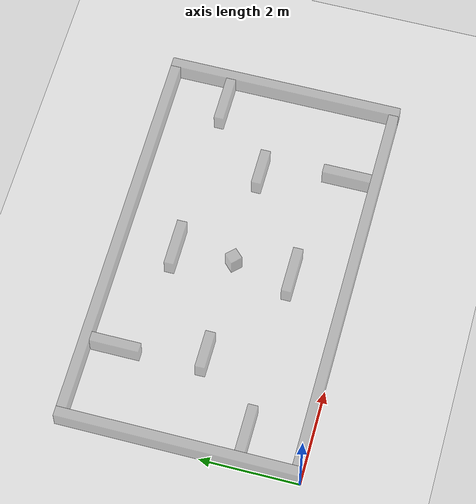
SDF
<sdf version="1.6">
 <world name="default">
  <light name="sun" type="directional">
   <cast_shadows>0</cast_shadows>
   <pose>0 0 10 0 -0 0</pose>
   <diffuse>0.8 0.8 0.8 1</diffuse>
   <specular>0.1 0.1 0.1 1</specular>
   <attenuation>
    <range>1000</range>
    <constant>0.9</constant>
    <linear>0.01</linear>
    <quadratic>0.001</quadratic>
   </attenuation>
   <direction>-0.5 0.5 -1</direction>
  </light>
  <gravity>0 0 -9.8</gravity>
  <magnetic_field>6e-06 2.3e-05 -4.2e-05</magnetic_field>
  <atmosphere type="adiabatic"/>
  <physics name="default_physics" default="0" type="ode">
   <max_step_size>0.001</max_step_size>
   <real_time_factor>1</real_time_factor>
   <real_time_update_rate>1000</real_time_update_rate>
  </physics>
  <scene><ambient>0.4 0.4 0.4 1</ambient><background>0.7 0.7 0.7 1</background><shadows>1</shadows></scene>
  <spherical_coordinates>
   <surface_model>EARTH_WGS84</surface_model>
   <latitude_deg>0</latitude_deg>
   <longitude_deg>0</longitude_deg>
   <elevation>0</elevation>
   <heading_deg>0</heading_deg>
  </spherical_coordinates>
  <model name="box_2">
   <link name="link">
    <inertial>
     <mass>1</mass>
     <inertia>
      <ixx>0.166667</ixx>
      <ixy>0</ixy>
      <ixz>0</ixz>
      <iyy>0.166667</iyy>
      <iyz>0</iyz>
      <izz>0.166667</izz>
     </inertia>
    </inertial>
    <visual name="visual">
     <geometry><box><size>0.25 0.25 0.4</size></box></geometry>
     <material>
      <script><name>Gazebo/GreyTransparent</name><uri>file://media/materials/scripts/gazebo.material</uri></script>
      <ambient>0.5 0.5 0.5 1</ambient>
      <diffuse>0.5 0.5 0.5 1</diffuse>
      <specular>0.01 0.01 0.01 1</specular>
      <emissive>0.3 0.3 0.3 0.1</emissive>
      <shader type="vertex"><normal_map>__default__</normal_map></shader>
     </material>
     <cast_shadows>0</cast_shadows>
    </visual>
    <collision name="collision">
     <geometry><box><size>0.25 0.25 0.4</size></box></geometry>
     <surface>
      <friction>
       <ode><mu>1</mu><mu2>1</mu2><fdir1>0 0 0</fdir1><slip1>0</slip1><slip2>0</slip2></ode>
       <torsional>
        <coefficient>1</coefficient>
        <patch_radius>0</patch_radius>
        <surface_radius>0</surface_radius>
        <use_patch_radius>1</use_patch_radius>
        <ode><slip>0</slip></ode>
       </torsional>
      </friction>
      <bounce><restitution_coefficient>0</restitution_coefficient><threshold>1e+06</threshold></bounce>
      <contact>
       <collide_without_contact>0</collide_without_contact>
       <collide_without_contact_bitmask>1</collide_without_contact_bitmask>
       <collide_bitmask>1</collide_bitmask>
       <ode>
        <soft_cfm>0</soft_cfm>
        <soft_erp>0.2</soft_erp>
        <kp>1e+13</kp>
        <kd>1</kd>
        <max_vel>0.01</max_vel>
        <min_depth>0</min_depth>
       </ode>
       <bullet>
        <split_impulse>1</split_impulse>
        <split_impulse_penetration_threshold>-0.01</split_impulse_penetration_threshold>
        <soft_cfm>0</soft_cfm>
        <soft_erp>0.2</soft_erp>
        <kp>1e+13</kp>
        <kd>1</kd>
       </bullet>
      </contact>
     </surface>
    </collision>
   </link>
   <static>1</static>
   <pose>4.245 2.445 0.2 1e-05 -0 0.7854</pose>
  </model>
  <model name="box_0_0">
   <link name="link">
    <inertial>
     <mass>1</mass>
     <inertia>
      <ixx>0.166667</ixx>
      <ixy>0</ixy>
      <ixz>0</ixz>
      <iyy>0.166667</iyy>
      <iyz>0</iyz>
      <izz>0.166667</izz>
     </inertia>
    </inertial>
    <visual name="visual">
     <geometry><box><size>1 0.2 0.4</size></box></geometry>
     <material>
      <script><name>Gazebo/GreyTransparent</name><uri>file://media/materials/scripts/gazebo.material</uri></script>
      <ambient>0.5 0.5 0.5 1</ambient>
      <diffuse>0.5 0.5 0.5 1</diffuse>
      <specular>0.01 0.01 0.01 1</specular>
      <emissive>0.3 0.3 0.3 0.1</emissive>
      <shader type="vertex"><normal_map>__default__</normal_map></shader>
     </material>
     <cast_shadows>0</cast_shadows>
    </visual>
    <collision name="collision">
     <geometry><box><size>1 0.2 0.4</size></box></geometry>
     <surface>
      <friction>
       <ode><mu>1</mu><mu2>1</mu2><fdir1>0 0 0</fdir1><slip1>0</slip1><slip2>0</slip2></ode>
       <torsional>
        <coefficient>1</coefficient>
        <patch_radius>0</patch_radius>
        <surface_radius>0</surface_radius>
        <use_patch_radius>1</use_patch_radius>
        <ode><slip>0</slip></ode>
       </torsional>
      </friction>
      <bounce><restitution_coefficient>0</restitution_coefficient><threshold>1e+06</threshold></bounce>
      <contact>
       <collide_without_contact>0</collide_without_contact>
       <collide_without_contact_bitmask>1</collide_without_contact_bitmask>
       <collide_bitmask>1</collide_bitmask>
       <ode>
        <soft_cfm>0</soft_cfm>
        <soft_erp>0.2</soft_erp>
        <kp>1e+13</kp>
        <kd>1</kd>
        <max_vel>0.01</max_vel>
        <min_depth>0</min_depth>
       </ode>
       <bullet>
        <split_impulse>1</split_impulse>
        <split_impulse_penetration_threshold>-0.01</split_impulse_penetration_threshold>
        <soft_cfm>0</soft_cfm>
        <soft_erp>0.2</soft_erp>
        <kp>1e+13</kp>
        <kd>1</kd>
       </bullet>
      </contact>
     </surface>
    </collision>
   </link>
   <static>1</static>
   <pose>0.705 1.24 0.2 0 -0 0</pose>
  </model>
  <model name="box_0_0_clone">
   <link name="link">
    <inertial>
     <mass>1</mass>
     <inertia>
      <ixx>0.166667</ixx>
      <ixy>0</ixy>
      <ixz>0</ixz>
      <iyy>0.166667</iyy>
      <iyz>0</iyz>
      <izz>0.166667</izz>
     </inertia>
    </inertial>
    <visual name="visual">
     <geometry><box><size>1 0.2 0.4</size></box></geometry>
     <material>
      <script><name>Gazebo/GreyTransparent</name><uri>file://media/materials/scripts/gazebo.material</uri></script>
      <ambient>0.5 0.5 0.5 1</ambient>
      <diffuse>0.5 0.5 0.5 1</diffuse>
      <specular>0.01 0.01 0.01 1</specular>
      <emissive>0.3 0.3 0.3 0.1</emissive>
      <shader type="vertex"><normal_map>__default__</normal_map></shader>
     </material>
     <cast_shadows>0</cast_shadows>
    </visual>
    <collision name="collision">
     <geometry><box><size>1 0.2 0.4</size></box></geometry>
     <surface>
      <friction>
       <ode><mu>1</mu><mu2>1</mu2><fdir1>0 0 0</fdir1><slip1>0</slip1><slip2>0</slip2></ode>
       <torsional>
        <coefficient>1</coefficient>
        <patch_radius>0</patch_radius>
        <surface_radius>0</surface_radius>
        <use_patch_radius>1</use_patch_radius>
        <ode><slip>0</slip></ode>
       </torsional>
      </friction>
      <bounce><restitution_coefficient>0</restitution_coefficient><threshold>1e+06</threshold></bounce>
      <contact>
       <collide_without_contact>0</collide_without_contact>
       <collide_without_contact_bitmask>1</collide_without_contact_bitmask>
       <collide_bitmask>1</collide_bitmask>
       <ode>
        <soft_cfm>0</soft_cfm>
        <soft_erp>0.2</soft_erp>
        <kp>1e+13</kp>
        <kd>1</kd>
        <max_vel>0.01</max_vel>
        <min_depth>0</min_depth>
       </ode>
       <bullet>
        <split_impulse>1</split_impulse>
        <split_impulse_penetration_threshold>-0.01</split_impulse_penetration_threshold>
        <soft_cfm>0</soft_cfm>
        <soft_erp>0.2</soft_erp>
        <kp>1e+13</kp>
        <kd>1</kd>
       </bullet>
      </contact>
     </surface>
    </collision>
   </link>
   <static>1</static>
   <pose>7.785 3.585 0.2 0 -0 0</pose>
  </model>
  <model name="box_0_0_clone_0">
   <link name="link">
    <inertial>
     <mass>1</mass>
     <inertia>
      <ixx>0.166667</ixx>
      <ixy>0</ixy>
      <ixz>0</ixz>
      <iyy>0.166667</iyy>
      <iyz>0</iyz>
      <izz>0.166667</izz>
     </inertia>
    </inertial>
    <visual name="visual">
     <geometry><box><size>1 0.2 0.4</size></box></geometry>
     <material>
      <script><name>Gazebo/GreyTransparent</name><uri>file://media/materials/scripts/gazebo.material</uri></script>
      <ambient>0.5 0.5 0.5 1</ambient>
      <diffuse>0.5 0.5 0.5 1</diffuse>
      <specular>0.01 0.01 0.01 1</specular>
      <emissive>0.3 0.3 0.3 0.1</emissive>
      <shader type="vertex"><normal_map>__default__</normal_map></shader>
     </material>
     <cast_shadows>0</cast_shadows>
    </visual>
    <collision name="collision">
     <geometry><box><size>1 0.2 0.4</size></box></geometry>
     <surface>
      <friction>
       <ode><mu>1</mu><mu2>1</mu2><fdir1>0 0 0</fdir1><slip1>0</slip1><slip2>0</slip2></ode>
       <torsional>
        <coefficient>1</coefficient>
        <patch_radius>0</patch_radius>
        <surface_radius>0</surface_radius>
        <use_patch_radius>1</use_patch_radius>
        <ode><slip>0</slip></ode>
       </torsional>
      </friction>
      <bounce><restitution_coefficient>0</restitution_coefficient><threshold>1e+06</threshold></bounce>
      <contact>
       <collide_without_contact>0</collide_without_contact>
       <collide_without_contact_bitmask>1</collide_without_contact_bitmask>
       <collide_bitmask>1</collide_bitmask>
       <ode>
        <soft_cfm>0</soft_cfm>
        <soft_erp>0.2</soft_erp>
        <kp>1e+13</kp>
        <kd>1</kd>
        <max_vel>0.01</max_vel>
        <min_depth>0</min_depth>
       </ode>
       <bullet>
        <split_impulse>1</split_impulse>
        <split_impulse_penetration_threshold>-0.01</split_impulse_penetration_threshold>
        <soft_cfm>0</soft_cfm>
        <soft_erp>0.2</soft_erp>
        <kp>1e+13</kp>
        <kd>1</kd>
       </bullet>
      </contact>
     </surface>
    </collision>
   </link>
   <static>1</static>
   <pose>4.245 1.24 0.2 0 -0 0</pose>
  </model>
  <model name="box_0_0_clone_1">
   <link name="link">
    <inertial>
     <mass>1</mass>
     <inertia>
      <ixx>0.166667</ixx>
      <ixy>0</ixy>
      <ixz>0</ixz>
      <iyy>0.166667</iyy>
      <iyz>0</iyz>
      <izz>0.166667</izz>
     </inertia>
    </inertial>
    <visual name="visual">
     <geometry><box><size>1 0.2 0.4</size></box></geometry>
     <material>
      <script><name>Gazebo/GreyTransparent</name><uri>file://media/materials/scripts/gazebo.material</uri></script>
      <ambient>0.5 0.5 0.5 1</ambient>
      <diffuse>0.5 0.5 0.5 1</diffuse>
      <specular>0.01 0.01 0.01 1</specular>
      <emissive>0.3 0.3 0.3 0.1</emissive>
      <shader type="vertex"><normal_map>__default__</normal_map></shader>
     </material>
     <cast_shadows>0</cast_shadows>
    </visual>
    <collision name="collision">
     <geometry><box><size>1 0.2 0.4</size></box></geometry>
     <surface>
      <friction>
       <ode><mu>1</mu><mu2>1</mu2><fdir1>0 0 0</fdir1><slip1>0</slip1><slip2>0</slip2></ode>
       <torsional>
        <coefficient>1</coefficient>
        <patch_radius>0</patch_radius>
        <surface_radius>0</surface_radius>
        <use_patch_radius>1</use_patch_radius>
        <ode><slip>0</slip></ode>
       </torsional>
      </friction>
      <bounce><restitution_coefficient>0</restitution_coefficient><threshold>1e+06</threshold></bounce>
      <contact>
       <collide_without_contact>0</collide_without_contact>
       <collide_without_contact_bitmask>1</collide_without_contact_bitmask>
       <collide_bitmask>1</collide_bitmask>
       <ode>
        <soft_cfm>0</soft_cfm>
        <soft_erp>0.2</soft_erp>
        <kp>1e+13</kp>
        <kd>1</kd>
        <max_vel>0.01</max_vel>
        <min_depth>0</min_depth>
       </ode>
       <bullet>
        <split_impulse>1</split_impulse>
        <split_impulse_penetration_threshold>-0.01</split_impulse_penetration_threshold>
        <soft_cfm>0</soft_cfm>
        <soft_erp>0.2</soft_erp>
        <kp>1e+13</kp>
        <kd>1</kd>
       </bullet>
      </contact>
     </surface>
    </collision>
   </link>
   <static>1</static>
   <pose>1.805 4.185 0.2 0 -0 1.5708</pose>
  </model>
  <model name="box_0_0_clone_2">
   <link name="link">
    <inertial>
     <mass>1</mass>
     <inertia>
      <ixx>0.166667</ixx>
      <ixy>0</ixy>
      <ixz>0</ixz>
      <iyy>0.166667</iyy>
      <iyz>0</iyz>
      <izz>0.166667</izz>
     </inertia>
    </inertial>
    <visual name="visual">
     <geometry><box><size>1 0.2 0.4</size></box></geometry>
     <material>
      <script><name>Gazebo/GreyTransparent</name><uri>file://media/materials/scripts/gazebo.material</uri></script>
      <ambient>0.5 0.5 0.5 1</ambient>
      <diffuse>0.5 0.5 0.5 1</diffuse>
      <specular>0.01 0.01 0.01 1</specular>
      <emissive>0.3 0.3 0.3 0.1</emissive>
      <shader type="vertex"><normal_map>__default__</normal_map></shader>
     </material>
     <cast_shadows>0</cast_shadows>
    </visual>
    <collision name="collision">
     <geometry><box><size>1 0.2 0.4</size></box></geometry>
     <surface>
      <friction>
       <ode><mu>1</mu><mu2>1</mu2><fdir1>0 0 0</fdir1><slip1>0</slip1><slip2>0</slip2></ode>
       <torsional>
        <coefficient>1</coefficient>
        <patch_radius>0</patch_radius>
        <surface_radius>0</surface_radius>
        <use_patch_radius>1</use_patch_radius>
        <ode><slip>0</slip></ode>
       </torsional>
      </friction>
      <bounce><restitution_coefficient>0</restitution_coefficient><threshold>1e+06</threshold></bounce>
      <contact>
       <collide_without_contact>0</collide_without_contact>
       <collide_without_contact_bitmask>1</collide_without_contact_bitmask>
       <collide_bitmask>1</collide_bitmask>
       <ode>
        <soft_cfm>0</soft_cfm>
        <soft_erp>0.2</soft_erp>
        <kp>1e+13</kp>
        <kd>1</kd>
        <max_vel>0.01</max_vel>
        <min_depth>0</min_depth>
       </ode>
       <bullet>
        <split_impulse>1</split_impulse>
        <split_impulse_penetration_threshold>-0.01</split_impulse_penetration_threshold>
        <soft_cfm>0</soft_cfm>
        <soft_erp>0.2</soft_erp>
        <kp>1e+13</kp>
        <kd>1</kd>
       </bullet>
      </contact>
     </surface>
    </collision>
   </link>
   <static>1</static>
   <pose>4.245 3.65 0.2 0 -0 0</pose>
  </model>
  <model name="box_0_0_clone_3">
   <link name="link">
    <inertial>
     <mass>1</mass>
     <inertia>
      <ixx>0.166667</ixx>
      <ixy>0</ixy>
      <ixz>0</ixz>
      <iyy>0.166667</iyy>
      <iyz>0</iyz>
      <izz>0.166667</izz>
     </inertia>
    </inertial>
    <visual name="visual">
     <geometry><box><size>1 0.2 0.4</size></box></geometry>
     <material>
      <script><name>Gazebo/GreyTransparent</name><uri>file://media/materials/scripts/gazebo.material</uri></script>
      <ambient>0.5 0.5 0.5 1</ambient>
      <diffuse>0.5 0.5 0.5 1</diffuse>
      <specular>0.01 0.01 0.01 1</specular>
      <emissive>0.3 0.3 0.3 0.1</emissive>
      <shader type="vertex"><normal_map>__default__</normal_map></shader>
     </material>
     <cast_shadows>0</cast_shadows>
    </visual>
    <collision name="collision">
     <geometry><box><size>1 0.2 0.4</size></box></geometry>
     <surface>
      <friction>
       <ode><mu>1</mu><mu2>1</mu2><fdir1>0 0 0</fdir1><slip1>0</slip1><slip2>0</slip2></ode>
       <torsional>
        <coefficient>1</coefficient>
        <patch_radius>0</patch_radius>
        <surface_radius>0</surface_radius>
        <use_patch_radius>1</use_patch_radius>
        <ode><slip>0</slip></ode>
       </torsional>
      </friction>
      <bounce><restitution_coefficient>0</restitution_coefficient><threshold>1e+06</threshold></bounce>
      <contact>
       <collide_without_contact>0</collide_without_contact>
       <collide_without_contact_bitmask>1</collide_without_contact_bitmask>
       <collide_bitmask>1</collide_bitmask>
       <ode>
        <soft_cfm>0</soft_cfm>
        <soft_erp>0.2</soft_erp>
        <kp>1e+13</kp>
        <kd>1</kd>
        <max_vel>0.01</max_vel>
        <min_depth>0</min_depth>
       </ode>
       <bullet>
        <split_impulse>1</split_impulse>
        <split_impulse_penetration_threshold>-0.01</split_impulse_penetration_threshold>
        <soft_cfm>0</soft_cfm>
        <soft_erp>0.2</soft_erp>
        <kp>1e+13</kp>
        <kd>1</kd>
       </bullet>
      </contact>
     </surface>
    </collision>
   </link>
   <static>1</static>
   <pose>6.685 0.705 0.2 0 -0 1.5708</pose>
  </model>
  <model name="box_1_0">
   <link name="link">
    <inertial>
     <mass>1</mass>
     <inertia>
      <ixx>0.166667</ixx>
      <ixy>0</ixy>
      <ixz>0</ixz>
      <iyy>0.166667</iyy>
      <iyz>0</iyz>
      <izz>0.166667</izz>
     </inertia>
    </inertial>
    <visual name="visual">
     <geometry><box><size>0.8 0.2 0.4</size></box></geometry>
     <material>
      <script><name>Gazebo/GreyTransparent</name><uri>file://media/materials/scripts/gazebo.material</uri></script>
      <ambient>0.5 0.5 0.5 1</ambient>
      <diffuse>0.5 0.5 0.5 1</diffuse>
      <specular>0.01 0.01 0.01 1</specular>
      <emissive>0.3 0.3 0.3 0.1</emissive>
      <shader type="vertex"><normal_map>__default__</normal_map></shader>
     </material>
     <cast_shadows>0</cast_shadows>
    </visual>
    <collision name="collision">
     <geometry><box><size>0.8 0.2 0.4</size></box></geometry>
     <surface>
      <friction>
       <ode><mu>1</mu><mu2>1</mu2><fdir1>0 0 0</fdir1><slip1>0</slip1><slip2>0</slip2></ode>
       <torsional>
        <coefficient>1</coefficient>
        <patch_radius>0</patch_radius>
        <surface_radius>0</surface_radius>
        <use_patch_radius>1</use_patch_radius>
        <ode><slip>0</slip></ode>
       </torsional>
      </friction>
      <bounce><restitution_coefficient>0</restitution_coefficient><threshold>1e+06</threshold></bounce>
      <contact>
       <collide_without_contact>0</collide_without_contact>
       <collide_without_contact_bitmask>1</collide_without_contact_bitmask>
       <collide_bitmask>1</collide_bitmask>
       <ode>
        <soft_cfm>0</soft_cfm>
        <soft_erp>0.2</soft_erp>
        <kp>1e+13</kp>
        <kd>1</kd>
        <max_vel>0.01</max_vel>
        <min_depth>0</min_depth>
       </ode>
       <bullet>
        <split_impulse>1</split_impulse>
        <split_impulse_penetration_threshold>-0.01</split_impulse_penetration_threshold>
        <soft_cfm>0</soft_cfm>
        <soft_erp>0.2</soft_erp>
        <kp>1e+13</kp>
        <kd>1</kd>
       </bullet>
      </contact>
     </surface>
    </collision>
   </link>
   <static>1</static>
   <pose>6.385 2.445 0.2 0 -0 0</pose>
  </model>
  <model name="box_1_0_clone">
   <link name="link">
    <inertial>
     <mass>1</mass>
     <inertia>
      <ixx>0.166667</ixx>
      <ixy>0</ixy>
      <ixz>0</ixz>
      <iyy>0.166667</iyy>
      <iyz>0</iyz>
      <izz>0.166667</izz>
     </inertia>
    </inertial>
    <visual name="visual">
     <geometry><box><size>0.8 0.2 0.4</size></box></geometry>
     <material>
      <script><name>Gazebo/GreyTransparent</name><uri>file://media/materials/scripts/gazebo.material</uri></script>
      <ambient>0.5 0.5 0.5 1</ambient>
      <diffuse>0.5 0.5 0.5 1</diffuse>
      <specular>0.01 0.01 0.01 1</specular>
      <emissive>0.3 0.3 0.3 0.1</emissive>
      <shader type="vertex"><normal_map>__default__</normal_map></shader>
     </material>
     <cast_shadows>0</cast_shadows>
    </visual>
    <collision name="collision">
     <geometry><box><size>0.8 0.2 0.4</size></box></geometry>
     <surface>
      <friction>
       <ode><mu>1</mu><mu2>1</mu2><fdir1>0 0 0</fdir1><slip1>0</slip1><slip2>0</slip2></ode>
       <torsional>
        <coefficient>1</coefficient>
        <patch_radius>0</patch_radius>
        <surface_radius>0</surface_radius>
        <use_patch_radius>1</use_patch_radius>
        <ode><slip>0</slip></ode>
       </torsional>
      </friction>
      <bounce><restitution_coefficient>0</restitution_coefficient><threshold>1e+06</threshold></bounce>
      <contact>
       <collide_without_contact>0</collide_without_contact>
       <collide_without_contact_bitmask>1</collide_without_contact_bitmask>
       <collide_bitmask>1</collide_bitmask>
       <ode>
        <soft_cfm>0</soft_cfm>
        <soft_erp>0.2</soft_erp>
        <kp>1e+13</kp>
        <kd>1</kd>
        <max_vel>0.01</max_vel>
        <min_depth>0</min_depth>
       </ode>
       <bullet>
        <split_impulse>1</split_impulse>
        <split_impulse_penetration_threshold>-0.01</split_impulse_penetration_threshold>
        <soft_cfm>0</soft_cfm>
        <soft_erp>0.2</soft_erp>
        <kp>1e+13</kp>
        <kd>1</kd>
       </bullet>
      </contact>
     </surface>
    </collision>
   </link>
   <static>1</static>
   <pose>2.105 2.445 0.2 0 -0 0</pose>
  </model>
  <model name="boundary1_0">
   <link name="link">
    <inertial>
     <mass>1</mass>
     <inertia>
      <ixx>0.166667</ixx>
      <ixy>0</ixy>
      <ixz>0</ixz>
      <iyy>0.166667</iyy>
      <iyz>0</iyz>
      <izz>0.166667</izz>
     </inertia>
    </inertial>
    <visual name="visual">
     <geometry><box><size>0.205 4.89 0.4</size></box></geometry>
     <material>
      <script><name>Gazebo/GreyTransparent</name><uri>file://media/materials/scripts/gazebo.material</uri></script>
      <ambient>0.5 0.5 0.5 1</ambient>
      <diffuse>0.5 0.5 0.5 1</diffuse>
      <specular>0.01 0.01 0.01 1</specular>
      <emissive>0.3 0.3 0.3 0.1</emissive>
      <shader type="vertex"><normal_map>__default__</normal_map></shader>
     </material>
     <cast_shadows>0</cast_shadows>
    </visual>
    <collision name="collision">
     <geometry><box><size>0.205 4.89 0.4</size></box></geometry>
     <surface>
      <friction>
       <ode><mu>1</mu><mu2>1</mu2><fdir1>0 0 0</fdir1><slip1>0</slip1><slip2>0</slip2></ode>
       <torsional>
        <coefficient>1</coefficient>
        <patch_radius>0</patch_radius>
        <surface_radius>0</surface_radius>
        <use_patch_radius>1</use_patch_radius>
        <ode><slip>0</slip></ode>
       </torsional>
      </friction>
      <bounce><restitution_coefficient>0</restitution_coefficient><threshold>1e+06</threshold></bounce>
      <contact>
       <collide_without_contact>0</collide_without_contact>
       <collide_without_contact_bitmask>1</collide_without_contact_bitmask>
       <collide_bitmask>1</collide_bitmask>
       <ode>
        <soft_cfm>0</soft_cfm>
        <soft_erp>0.2</soft_erp>
        <kp>1e+13</kp>
        <kd>1</kd>
        <max_vel>0.01</max_vel>
        <min_depth>0</min_depth>
       </ode>
       <bullet>
        <split_impulse>1</split_impulse>
        <split_impulse_penetration_threshold>-0.01</split_impulse_penetration_threshold>
        <soft_cfm>0</soft_cfm>
        <soft_erp>0.2</soft_erp>
        <kp>1e+13</kp>
        <kd>1</kd>
       </bullet>
      </contact>
     </surface>
    </collision>
   </link>
   <static>1</static>
   <pose>0.1025 2.445 0.2 0 -0 0</pose>
  </model>
  <model name="boundary1_0_clone">
   <link name="link">
    <inertial>
     <mass>1</mass>
     <inertia>
      <ixx>0.166667</ixx>
      <ixy>0</ixy>
      <ixz>0</ixz>
      <iyy>0.166667</iyy>
      <iyz>0</iyz>
      <izz>0.166667</izz>
     </inertia>
    </inertial>
    <visual name="visual">
     <geometry><box><size>0.205 4.89 0.4</size></box></geometry>
     <material>
      <script><name>Gazebo/GreyTransparent</name><uri>file://media/materials/scripts/gazebo.material</uri></script>
      <ambient>0.5 0.5 0.5 1</ambient>
      <diffuse>0.5 0.5 0.5 1</diffuse>
      <specular>0.01 0.01 0.01 1</specular>
      <emissive>0.3 0.3 0.3 0.1</emissive>
      <shader type="vertex"><normal_map>__default__</normal_map></shader>
     </material>
     <cast_shadows>0</cast_shadows>
    </visual>
    <collision name="collision">
     <geometry><box><size>0.205 4.89 0.4</size></box></geometry>
     <surface>
      <friction>
       <ode><mu>1</mu><mu2>1</mu2><fdir1>0 0 0</fdir1><slip1>0</slip1><slip2>0</slip2></ode>
       <torsional>
        <coefficient>1</coefficient>
        <patch_radius>0</patch_radius>
        <surface_radius>0</surface_radius>
        <use_patch_radius>1</use_patch_radius>
        <ode><slip>0</slip></ode>
       </torsional>
      </friction>
      <bounce><restitution_coefficient>0</restitution_coefficient><threshold>1e+06</threshold></bounce>
      <contact>
       <collide_without_contact>0</collide_without_contact>
       <collide_without_contact_bitmask>1</collide_without_contact_bitmask>
       <collide_bitmask>1</collide_bitmask>
       <ode>
        <soft_cfm>0</soft_cfm>
        <soft_erp>0.2</soft_erp>
        <kp>1e+13</kp>
        <kd>1</kd>
        <max_vel>0.01</max_vel>
        <min_depth>0</min_depth>
       </ode>
       <bullet>
        <split_impulse>1</split_impulse>
        <split_impulse_penetration_threshold>-0.01</split_impulse_penetration_threshold>
        <soft_cfm>0</soft_cfm>
        <soft_erp>0.2</soft_erp>
        <kp>1e+13</kp>
        <kd>1</kd>
       </bullet>
      </contact>
     </surface>
    </collision>
   </link>
   <static>1</static>
   <pose>8.3875 2.445 0.2 0 -0 0</pose>
  </model>
  <model name="boundary2">
   <link name="link">
    <inertial>
     <mass>1</mass>
     <inertia>
      <ixx>0.166667</ixx>
      <ixy>0</ixy>
      <ixz>0</ixz>
      <iyy>0.166667</iyy>
      <iyz>0</iyz>
      <izz>0.166667</izz>
     </inertia>
    </inertial>
    <visual name="visual">
     <geometry><box><size>8.08 0.205 0.4</size></box></geometry>
     <material>
      <script><name>Gazebo/GreyTransparent</name><uri>file://media/materials/scripts/gazebo.material</uri></script>
      <ambient>0.5 0.5 0.5 1</ambient>
      <diffuse>0.5 0.5 0.5 1</diffuse>
      <specular>0.01 0.01 0.01 1</specular>
      <emissive>0.3 0.3 0.3 0.1</emissive>
      <shader type="vertex"><normal_map>__default__</normal_map></shader>
     </material>
     <cast_shadows>0</cast_shadows>
    </visual>
    <collision name="collision">
     <geometry><box><size>8.08 0.205 0.4</size></box></geometry>
     <surface>
      <friction>
       <ode><mu>1</mu><mu2>1</mu2><fdir1>0 0 0</fdir1><slip1>0</slip1><slip2>0</slip2></ode>
       <torsional>
        <coefficient>1</coefficient>
        <patch_radius>0</patch_radius>
        <surface_radius>0</surface_radius>
        <use_patch_radius>1</use_patch_radius>
        <ode><slip>0</slip></ode>
       </torsional>
      </friction>
      <bounce><restitution_coefficient>0</restitution_coefficient><threshold>1e+06</threshold></bounce>
      <contact>
       <collide_without_contact>0</collide_without_contact>
       <collide_without_contact_bitmask>1</collide_without_contact_bitmask>
       <collide_bitmask>1</collide_bitmask>
       <ode>
        <soft_cfm>0</soft_cfm>
        <soft_erp>0.2</soft_erp>
        <kp>1e+13</kp>
        <kd>1</kd>
        <max_vel>0.01</max_vel>
        <min_depth>0</min_depth>
       </ode>
       <bullet>
        <split_impulse>1</split_impulse>
        <split_impulse_penetration_threshold>-0.01</split_impulse_penetration_threshold>
        <soft_cfm>0</soft_cfm>
        <soft_erp>0.2</soft_erp>
        <kp>1e+13</kp>
        <kd>1</kd>
       </bullet>
      </contact>
     </surface>
    </collision>
   </link>
   <static>1</static>
   <pose>4.245 0.1025 0.2 0 -0 0</pose>
  </model>
  <model name="boundary2_clone">
   <link name="link">
    <inertial>
     <mass>1</mass>
     <inertia>
      <ixx>0.166667</ixx>
      <ixy>0</ixy>
      <ixz>0</ixz>
      <iyy>0.166667</iyy>
      <iyz>0</iyz>
      <izz>0.166667</izz>
     </inertia>
    </inertial>
    <visual name="visual">
     <geometry><box><size>8.08 0.205 0.4</size></box></geometry>
     <material>
      <script><name>Gazebo/GreyTransparent</name><uri>file://media/materials/scripts/gazebo.material</uri></script>
      <ambient>0.5 0.5 0.5 1</ambient>
      <diffuse>0.5 0.5 0.5 1</diffuse>
      <specular>0.01 0.01 0.01 1</specular>
      <emissive>0.3 0.3 0.3 0.1</emissive>
      <shader type="vertex"><normal_map>__default__</normal_map></shader>
     </material>
     <cast_shadows>0</cast_shadows>
    </visual>
    <collision name="collision">
     <geometry><box><size>8.08 0.205 0.4</size></box></geometry>
     <surface>
      <friction>
       <ode><mu>1</mu><mu2>1</mu2><fdir1>0 0 0</fdir1><slip1>0</slip1><slip2>0</slip2></ode>
       <torsional>
        <coefficient>1</coefficient>
        <patch_radius>0</patch_radius>
        <surface_radius>0</surface_radius>
        <use_patch_radius>1</use_patch_radius>
        <ode><slip>0</slip></ode>
       </torsional>
      </friction>
      <bounce><restitution_coefficient>0</restitution_coefficient><threshold>1e+06</threshold></bounce>
      <contact>
       <collide_without_contact>0</collide_without_contact>
       <collide_without_contact_bitmask>1</collide_without_contact_bitmask>
       <collide_bitmask>1</collide_bitmask>
       <ode>
        <soft_cfm>0</soft_cfm>
        <soft_erp>0.2</soft_erp>
        <kp>1e+13</kp>
        <kd>1</kd>
        <max_vel>0.01</max_vel>
        <min_depth>0</min_depth>
       </ode>
       <bullet>
        <split_impulse>1</split_impulse>
        <split_impulse_penetration_threshold>-0.01</split_impulse_penetration_threshold>
        <soft_cfm>0</soft_cfm>
        <soft_erp>0.2</soft_erp>
        <kp>1e+13</kp>
        <kd>1</kd>
       </bullet>
      </contact>
     </surface>
    </collision>
   </link>
   <static>1</static>
   <pose>4.245 4.7875 0.2 0 -0 0</pose>
  </model>
  <model name="ground_plane_0">
   <static>1</static>
   <link name="link">
    <collision name="collision">
     <geometry><plane><normal>0 0 1</normal><size>100 100</size></plane></geometry>
     <surface><friction><ode><mu>100</mu><mu2>50</mu2></ode></friction></surface>
    </collision>
    <visual name="visual">
     <cast_shadows>0</cast_shadows>
     <geometry><plane><normal>0 0 1</normal><size>100 100</size></plane></geometry>
     <material>
      <script><uri>file://media/materials/scripts/gazebo.material</uri><name>Gazebo/White</name></script>
     </material>
    </visual>
   </link>
   <pose>3.99704 -1.66681 0 0 -0 0</pose>
  </model>
 </world>
</sdf>
